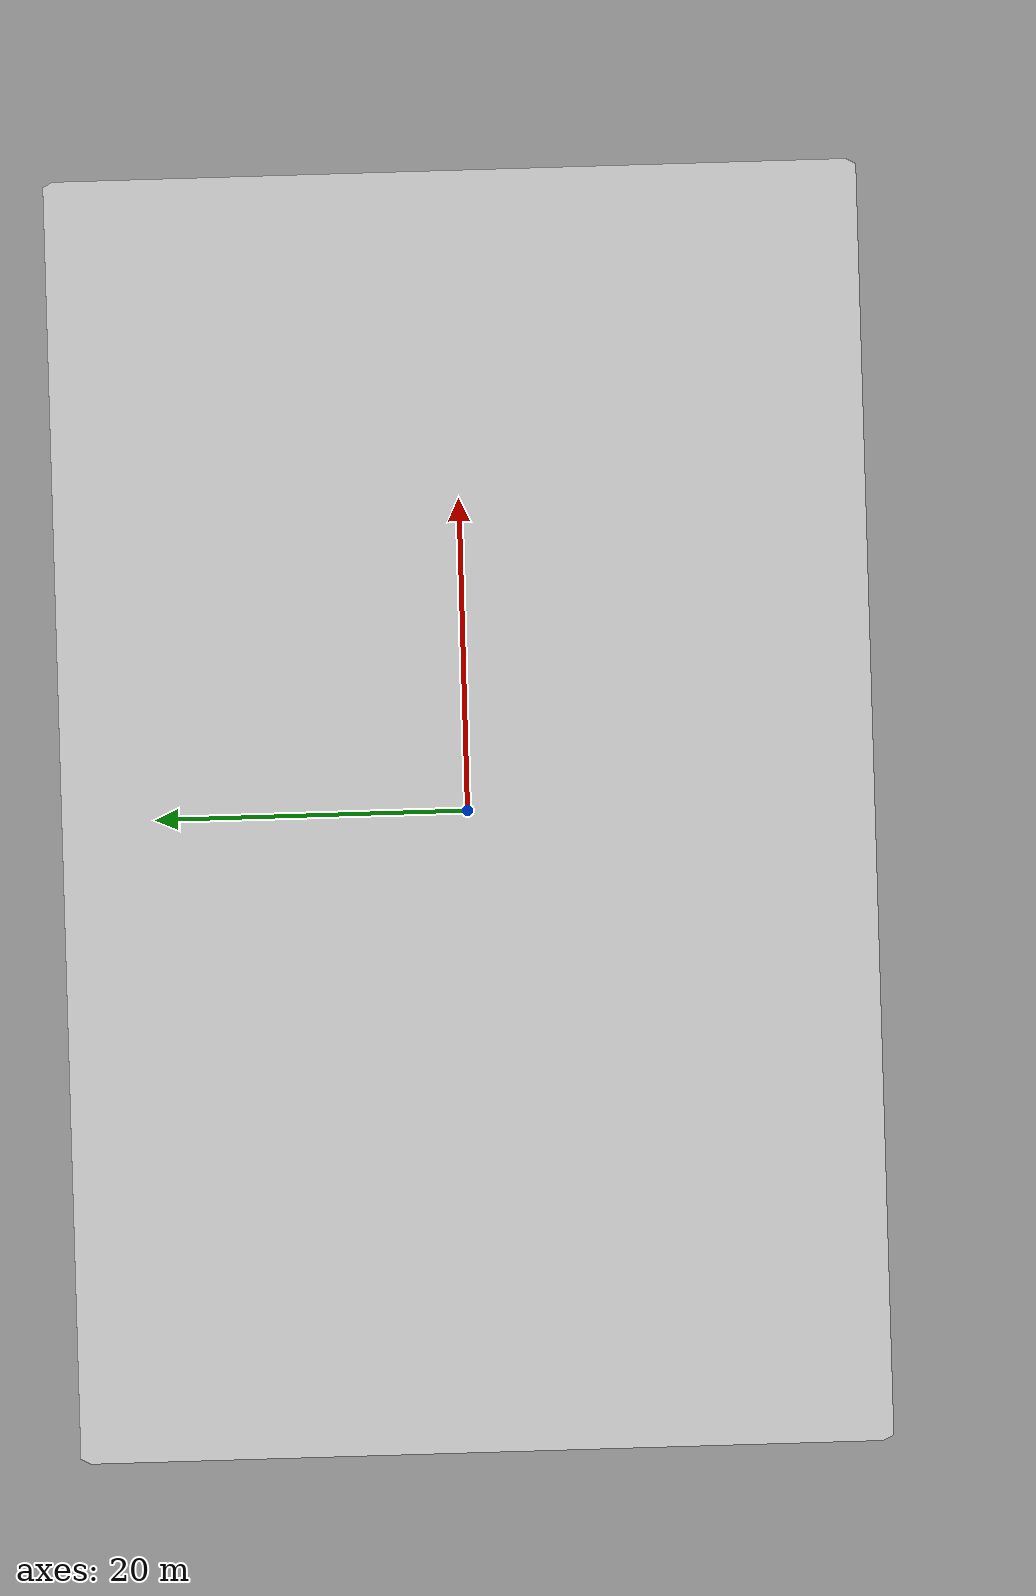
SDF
<sdf version='1.6'>
	<world name='default'>
	<gravity>0 0 -9.8</gravity>
		<model name='stadium.obj'>
			<static>1</static>
			<pose frame=''>0 0 0 0 0 0</pose>
			<link name='link_d2'>
			<inertial>
			<mass>0</mass>
			<inertia>
			<ixx>0.166667</ixx>
			<ixy>0</ixy>
			<ixz>0</ixz>
			<iyy>0.166667</iyy>
			<iyz>0</iyz>
			<izz>0.166667</izz>
			</inertia>
			</inertial>

			<collision name='collision_1'>
			<geometry>
            <plane>
              <normal>0 0 1</normal>
              <size>100 100</size>
            </plane>
          </geometry>
			  </collision>

			<visual name='visual'>
				<geometry>
				<mesh>
					<scale>1 1 1</scale>
					<uri>roboschool/models_outdoor/room/room.obj</uri>
				</mesh>
				</geometry>
			<material>
				<ambient>0.1 0.1 0.1 1</ambient>
				<diffuse>0.800000 0.800000 0.800000 1</diffuse>
				<specular>0.8 0.8 0.8 1</specular>
				<emissive>0 0 0 1</emissive>
			 </material>
			 </visual>
			 </link>
			</model>
	</world>
</sdf>
